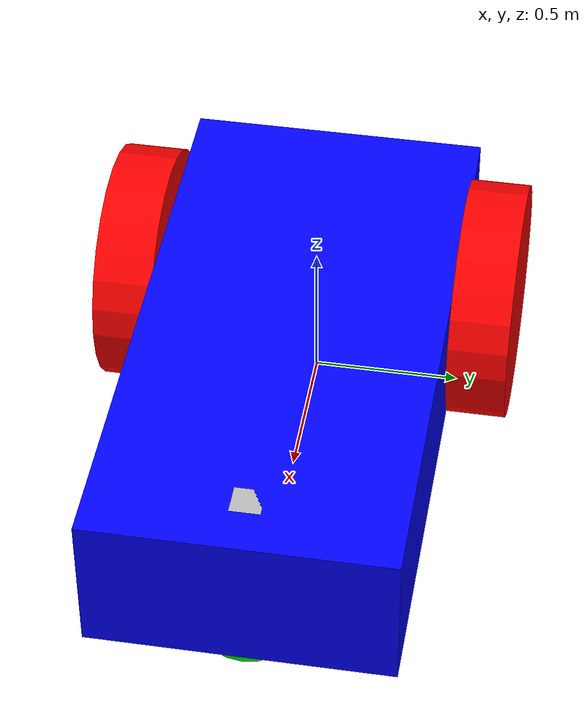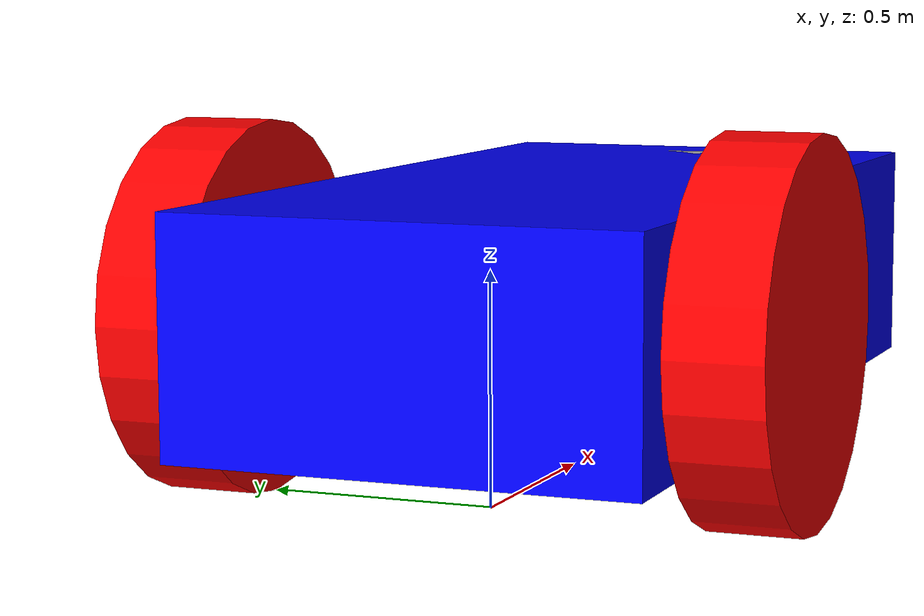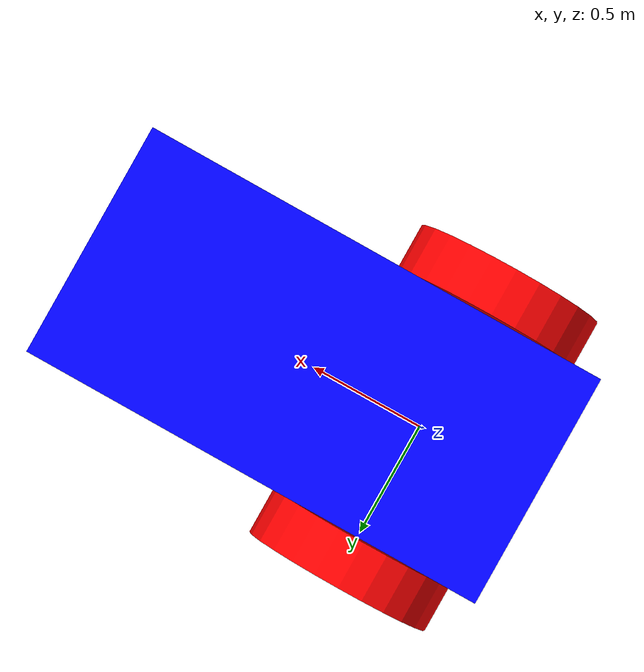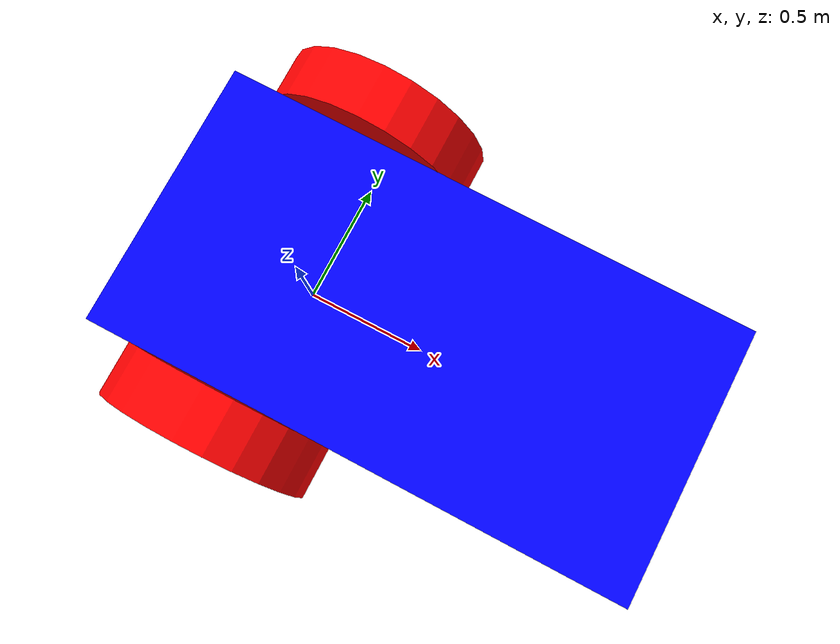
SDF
<?xml version="1.0" ?>
<sdf version='1.9'>
  <model name='vehicle_blue' canonical_link='chassis'>
    <link name='chassis'>
      <pose>0.5 0 0.4 0 -0 0</pose>
      <inertial>
        <mass>1.14395</mass>
        <inertia>
          <ixx>0.002</ixx>
          <ixy>0</ixy>
          <ixz>0</ixz>
          <iyy>0.002</iyy>
          <iyz>0</iyz>
          <izz>0.002</izz>
        </inertia>
        <pose>0 0 0 0 -0 0</pose>
      </inertial>
      <visual name='visual'>
        <geometry>
          <box>
            <size>2 1 0.5</size>
          </box>
        </geometry>
        <material>
          <ambient>0 0 1 1</ambient>
          <diffuse>0 0 1 1</diffuse>
          <specular>0 0 1 1</specular>
        </material>
      </visual>
      <collision name='collision'>
        <geometry>
          <box>
            <size>2 1 0.5</size>
          </box>
        </geometry>
        <surface>
          <friction>
            <ode/>
          </friction>
          <bounce/>
          <contact/>
        </surface>
      </collision>
      <sensor name='imu_sensor' type='imu'>
        <always_on>1</always_on>
        <update_rate>1</update_rate>
        <visualize>true</visualize>
        <topic>imu</topic>
      </sensor>
    </link>

    <link name='left_wheel'>
      <pose>0 0.6 0.4 -1.5707 0 0</pose>
      <inertial>
        <mass>1</mass>
        <inertia>
          <ixx>0.0002</ixx>
          <ixy>0</ixy>
          <ixz>0</ixz>
          <iyy>0.0002</iyy>
          <iyz>0</iyz>
          <izz>0.0002</izz>
        </inertia>
        <pose>0 0 0 0 -0 0</pose>
      </inertial>
      <visual name='visual'>
        <geometry>
          <cylinder>
            <radius>0.40000000000000002</radius>
            <length>0.20000000000000001</length>
          </cylinder>
        </geometry>
        <material>
          <ambient>1 0 0 1</ambient>
          <diffuse>1 0 0 1</diffuse>
          <specular>1 0 0 1</specular>
        </material>
      </visual>
      <collision name='collision'>
        <geometry>
          <cylinder>
            <radius>0.40000000000000002</radius>
            <length>0.20000000000000001</length>
          </cylinder>
        </geometry>
        <surface>
          <friction>
            <ode/>
          </friction>
          <bounce/>
          <contact/>
        </surface>
      </collision>
      <enable_wind>false</enable_wind>
    </link>
    <link name='right_wheel'>
      <pose>0 -0.6 0.4 -1.5707 0 0</pose>
      <inertial>
        <mass>1</mass>
        <inertia>
          <ixx>0.0002</ixx>
          <ixy>0</ixy>
          <ixz>0</ixz>
          <iyy>0.0002</iyy>
          <iyz>0</iyz>
          <izz>0.0002</izz>
        </inertia>
        <pose>0 0 0 0 -0 0</pose>
      </inertial>
      <visual name='visual'>
        <geometry>
          <cylinder>
            <radius>0.40000000000000002</radius>
            <length>0.20000000000000001</length>
          </cylinder>
        </geometry>
        <material>
          <ambient>1 0 0 1</ambient>
          <diffuse>1 0 0 1</diffuse>
          <specular>1 0 0 1</specular>
        </material>
      </visual>
      <collision name='collision'>
        <geometry>
          <cylinder>
            <radius>0.40000000000000002</radius>
            <length>0.20000000000000001</length>
          </cylinder>
        </geometry>
        <surface>
          <friction>
            <ode/>
          </friction>
          <bounce/>
          <contact/>
        </surface>
      </collision>
      <enable_wind>false</enable_wind>
    </link>

    <frame name='caster_frame' attached_to='chassis'>
      <pose>0.8 0 -0.2 0 0 0</pose>
    </frame>
    <link name='caster'>
      <pose relative_to='caster_frame'/>
      <inertial>
        <mass>1</mass>
        <inertia>
          <ixx>0.0002</ixx>
          <ixy>0</ixy>
          <ixz>0</ixz>
          <iyy>0.0002</iyy>
          <iyz>0</iyz>
          <izz>0.0002</izz>
        </inertia>
        <pose>0 0 0 0 -0 0</pose>
      </inertial>
      <visual name='visual'>
        <geometry>
          <sphere>
            <radius>0.20000000000000001</radius>
          </sphere>
        </geometry>
        <material>
          <ambient>0 1 0 1</ambient>
          <diffuse>0 1 0 1</diffuse>
          <specular>0 1 0 1</specular>
        </material>
      </visual>
      <collision name='collision'>
        <geometry>
          <sphere>
            <radius>0.20000000000000001</radius>
          </sphere>
        </geometry>
        <surface>
          <friction>
            <ode/>
          </friction>
          <bounce/>
          <contact/>
        </surface>
      </collision>
      <enable_wind>false</enable_wind>
    </link>

    <joint name='left_wheel_joint' type='revolute'>
      <pose>0 0 0 0 -0 0</pose>
      <parent>chassis</parent>
      <child>left_wheel</child>
      <axis>
        <xyz>0 9.6e-05 1</xyz>
        <limit>
          <lower>-1.7976900000000001e+308</lower>
          <upper>1.7976900000000001e+308</upper>
          <effort>inf</effort>
          <velocity>inf</velocity>
          <stiffness>100000000</stiffness>
          <dissipation>1</dissipation>
        </limit>
        <dynamics>
          <spring_reference>0</spring_reference>
          <spring_stiffness>0</spring_stiffness>
          <damping>0</damping>
          <friction>0</friction>
        </dynamics>
      </axis>
    </joint>
    <joint name='right_wheel_joint' type='revolute'>
      <pose>0 0 0 0 -0 0</pose>
      <parent>chassis</parent>
      <child>right_wheel</child>
      <axis>
        <xyz>0 9.6e-05 1</xyz>
        <limit>
          <lower>-1.7976900000000001e+308</lower>
          <upper>1.7976900000000001e+308</upper>
          <effort>inf</effort>
          <velocity>inf</velocity>
          <stiffness>100000000</stiffness>
          <dissipation>1</dissipation>
        </limit>
        <dynamics>
          <spring_reference>0</spring_reference>
          <spring_stiffness>0</spring_stiffness>
          <damping>0</damping>
          <friction>0</friction>
        </dynamics>
      </axis>
    </joint>
    <joint name='caster_wheel' type='ball'>
      <parent>chassis</parent>
      <child>caster</child>
      <xyz>0 0 0</xyz>
    </joint>

      <!-- lidar sensor -->
    <frame name="lidar_frame" attached_to='chassis'>
      <pose>0.8 0 0.2 0 0 0</pose>
    </frame>
    <link name="lidar_link">
      <pose relative_to='lidar_frame'/>
      <inertial>
        <mass>0.1</mass>
        <inertia>
          <ixx>0.0000000000000000000000002</ixx>
          <iyy>0.0000000000000000000000002</iyy>
          <izz>0.0000000000000000000000002</izz>
        </inertia>
      </inertial>
      <collision name="collision">
        <geometry>
          <box>
            <size>0.1 0.1 0.1</size>
          </box>
        </geometry>
      </collision>
      <visual name="visual">
        <geometry>
          <box>
            <size>0.1 0.1 0.1</size>
          </box>
        </geometry>
      </visual>
      <sensor name='gpu_lidar' type='gpu_lidar'>
        <pose>0 0 0 0 0 0</pose>
        <topic>scan</topic>
        <ignition_frame_id>vehicle_blue/lidar_link</ignition_frame_id>
        <update_rate>100</update_rate>
        <lidar>
          <scan>
            <horizontal>
              <samples>640</samples>
              <resolution>1</resolution>
              <min_angle>-2.1991148575</min_angle>
              <max_angle>2.1991148575</max_angle>
            </horizontal>
            <vertical>
              <samples>1</samples>
              <resolution>1</resolution>
              <min_angle>0.0</min_angle>
              <max_angle>0.0</max_angle>
            </vertical>
          </scan>
          <range>
            <min>0.08</min>
            <max>5.0</max>
            <resolution>0.005</resolution>
          </range>
        </lidar>
        <visualize>true</visualize>
      </sensor>
    </link>

    <joint name='lidar_joint' type='fixed'>
      <parent>chassis</parent>
      <child>lidar_link</child>
      <xyz>0 0 0</xyz>
    </joint>

    <plugin
          filename="libignition-gazebo-diff-drive-system.so"
          name="ignition::gazebo::systems::DiffDrive">
          <left_joint>left_wheel_joint</left_joint>
          <right_joint>right_wheel_joint</right_joint>
          <wheel_separation>1.2</wheel_separation>
          <wheel_radius>0.4</wheel_radius>
          <odom_publish_frequency>1</odom_publish_frequency>
      </plugin>

      <!-- control plugin -->

      <plugin filename="libignition-gazebo-triggered-publisher-system.so"
        name="ignition::gazebo::systems::TriggeredPublisher">
        <input type="ignition.msgs.Int32" topic="/keyboard/keypress">
            <match field="data">16777235</match>
        </input>
        <output type="ignition.msgs.Twist" topic="/model/vehicle_blue/cmd_vel">
            linear: {x: 2}, angular: {z: 0.0}
        </output>
      </plugin>
      <plugin filename="libignition-gazebo-triggered-publisher-system.so"
        name="ignition::gazebo::systems::TriggeredPublisher">
        <input type="ignition.msgs.Int32" topic="/keyboard/keypress">
            <match field="data">16777234</match>
        </input>
        <output type="ignition.msgs.Twist" topic="/model/vehicle_blue/cmd_vel">
            linear: {x: 0.0}, angular: {z: 1}
        </output>
      </plugin>
      <plugin filename="libignition-gazebo-triggered-publisher-system.so"
        name="ignition::gazebo::systems::TriggeredPublisher">
        <input type="ignition.msgs.Int32" topic="/keyboard/keypress">
            <match field="data">16777236</match>
        </input>
        <output type="ignition.msgs.Twist" topic="/model/vehicle_blue/cmd_vel">
            linear: {x: 0.0}, angular: {z: -1}
        </output>
      </plugin>
      <plugin filename="libignition-gazebo-triggered-publisher-system.so"
        name="ignition::gazebo::systems::TriggeredPublisher">
        <input type="ignition.msgs.Int32" topic="/keyboard/keypress">
            <match field="data">16777237</match>
        </input>
        <output type="ignition.msgs.Twist" topic="/model/vehicle_blue/cmd_vel">
            linear: {x: -2}, angular: {z: 0.0}
        </output>
      </plugin>
      <plugin filename="libignition-gazebo-triggered-publisher-system.so"
        name="ignition::gazebo::systems::TriggeredPublisher">
        <input type="ignition.msgs.Int32" topic="/keyboard/keypress">
            <match field="data">65</match>
        </input>
        <output type="ignition.msgs.Twist" topic="/model/vehicle_blue/cmd_vel">
            linear: {x: 0.0}, angular: {z: 0.0}
        </output>
      </plugin>
      <plugin
        filename="ignition-gazebo-joint-state-publisher-system"
        name="ignition::gazebo::systems::JointStatePublisher">
      </plugin>

      <plugin
        filename="ignition-gazebo-pose-publisher-system"
        name="ignition::gazebo::systems::PosePublisher">
        <publish_link_pose>true</publish_link_pose>
        <use_pose_vector_msg>true</use_pose_vector_msg>
        <static_publisher>true</static_publisher>
        <static_update_frequency>1</static_update_frequency>
      </plugin>

      <plugin
        filename="ignition-gazebo-odometry-publisher-system"
        name="ignition::gazebo::systems::OdometryPublisher">
        <odom_frame>vehicle_blue/odom</odom_frame>
        <robot_base_frame>vehicle_blue</robot_base_frame>
      </plugin>

  </model>
</sdf>
